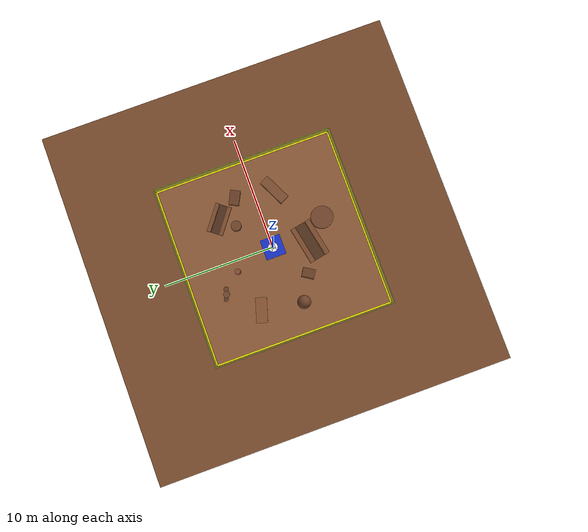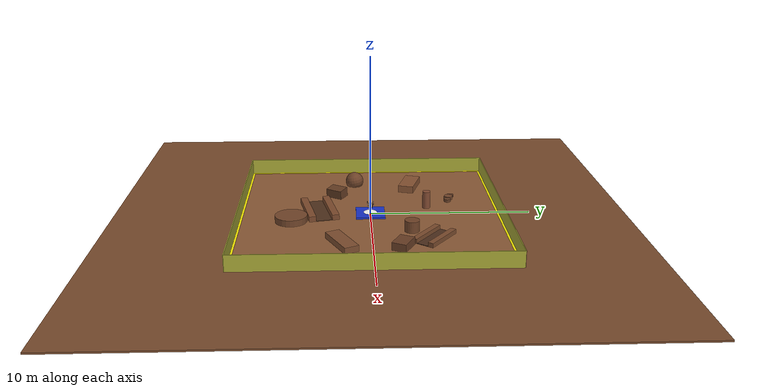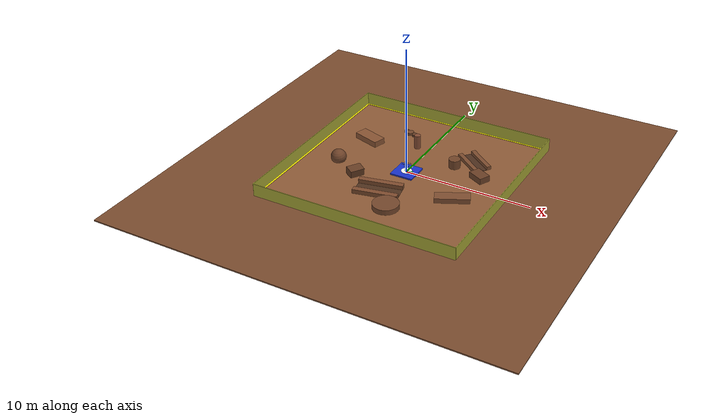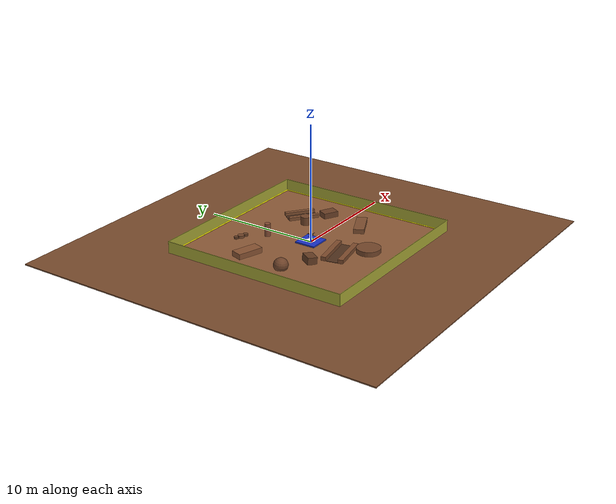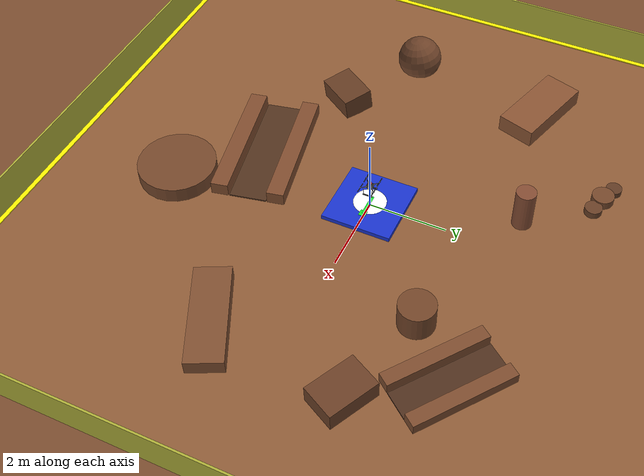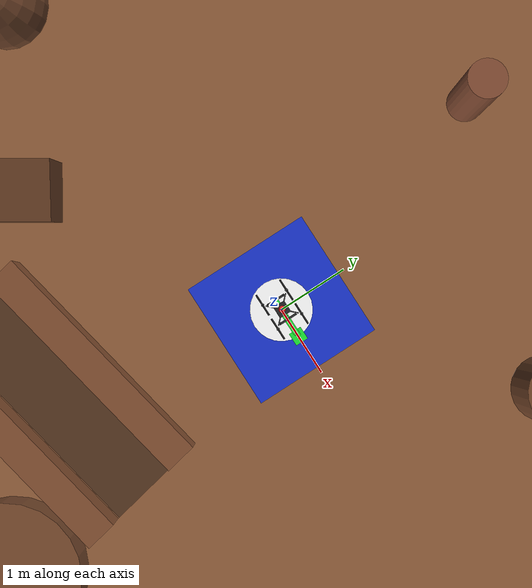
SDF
<?xml version="1.0" ?>
<sdf version="1.10">
  <world name="arena_world">
    <physics name="1ms" type="ignored">
      <max_step_size>0.001</max_step_size>
      <real_time_factor>1.0</real_time_factor>
    </physics>

    <plugin filename="gz-sim-physics-system" name="gz::sim::systems::Physics"/>
    <plugin filename="gz-sim-user-commands-system" name="gz::sim::systems::UserCommands"/>
    <plugin filename="gz-sim-scene-broadcaster-system" name="gz::sim::systems::SceneBroadcaster"/>
    <plugin filename="gz-sim-sensors-system" name="gz::sim::systems::Sensors">
      <render_engine>ogre2</render_engine>
    </plugin>

    <scene>
      <ambient>0.65 0.58 0.50 1</ambient>
      <background>0.78 0.71 0.62 1</background>
      <grid>false</grid>
    </scene>

    <!-- Start with camera framed on base + drone spawn area -->
    <gui fullscreen="0">
      <camera name="spawn_view">
        <!-- Keep default view inside the arena to avoid rendering through transparent walls. -->
        <pose>-6.0 -6.0 6.2 0 0.47 0.78</pose>
        <view_controller>orbit</view_controller>
        <projection_type>perspective</projection_type>
      </camera>
    </gui>

    <light type="directional" name="sun">
      <cast_shadows>true</cast_shadows>
      <pose>0 0 20 0 0 0</pose>
      <diffuse>0.95 0.88 0.78 1</diffuse>
      <specular>0.2 0.2 0.2 1</specular>
      <direction>-0.45 0.15 -0.88</direction>
    </light>

    <!-- Full floor -->
    <model name="arena_floor">
      <static>true</static>
      <pose>0 0 -0.05 0 0 0</pose>
      <link name="link">
        <collision name="collision">
          <geometry>
            <box>
              <size>32 32 0.1</size>
            </box>
          </geometry>
        </collision>
        <visual name="visual">
          <geometry>
            <box>
              <size>32 32 0.1</size>
            </box>
          </geometry>
          <material>
            <ambient>0.48 0.30 0.18 1</ambient>
            <diffuse>0.48 0.30 0.18 1</diffuse>
          </material>
        </visual>
      </link>
    </model>

    <!-- 16m x 16m mission zone tint -->
    <model name="arena_zone">
      <static>true</static>
      <pose>0 0 0.001 0 0 0</pose>
      <link name="link">
        <visual name="visual">
          <geometry>
            <box>
              <size>16 16 0.002</size>
            </box>
          </geometry>
          <material>
            <ambient>0.56 0.36 0.22 1</ambient>
            <diffuse>0.56 0.36 0.22 1</diffuse>
          </material>
        </visual>
      </link>
    </model>

    <!-- Yellow boundary markers -->
    <model name="yellow_bounds">
      <static>true</static>
      <pose>0 0 0.015 0 0 0</pose>
      <link name="link">
        <visual name="north">
          <pose>8 0 0 0 0 0</pose>
          <geometry>
            <box>
              <size>0.12 16 0.03</size>
            </box>
          </geometry>
          <material>
            <ambient>1 0.95 0.0 1</ambient>
            <diffuse>1 0.95 0.0 1</diffuse>
          </material>
        </visual>
        <visual name="south">
          <pose>-8 0 0 0 0 0</pose>
          <geometry>
            <box>
              <size>0.12 16 0.03</size>
            </box>
          </geometry>
          <material>
            <ambient>1 0.95 0.0 1</ambient>
            <diffuse>1 0.95 0.0 1</diffuse>
          </material>
        </visual>
        <visual name="east">
          <pose>0 8 0 0 0 0</pose>
          <geometry>
            <box>
              <size>16 0.12 0.03</size>
            </box>
          </geometry>
          <material>
            <ambient>1 0.95 0.0 1</ambient>
            <diffuse>1 0.95 0.0 1</diffuse>
          </material>
        </visual>
        <visual name="west">
          <pose>0 -8 0 0 0 0</pose>
          <geometry>
            <box>
              <size>16 0.12 0.03</size>
            </box>
          </geometry>
          <material>
            <ambient>1 0.95 0.0 1</ambient>
            <diffuse>1 0.95 0.0 1</diffuse>
          </material>
        </visual>
      </link>
    </model>

    <!-- Optional low perimeter walls for clearer bounds -->
    <model name="arena_walls">
      <static>true</static>
      <pose>0 0 0.5 0 0 0</pose>
      <link name="link">
        <collision name="north_collision">
          <pose>8.1 0 0 0 0 0</pose>
          <geometry>
            <box>
              <size>0.05 16.2 1.0</size>
            </box>
          </geometry>
        </collision>
        <collision name="south_collision">
          <pose>-8.1 0 0 0 0 0</pose>
          <geometry>
            <box>
              <size>0.05 16.2 1.0</size>
            </box>
          </geometry>
        </collision>
        <collision name="east_collision">
          <pose>0 8.1 0 0 0 0</pose>
          <geometry>
            <box>
              <size>16.2 0.05 1.0</size>
            </box>
          </geometry>
        </collision>
        <collision name="west_collision">
          <pose>0 -8.1 0 0 0 0</pose>
          <geometry>
            <box>
              <size>16.2 0.05 1.0</size>
            </box>
          </geometry>
        </collision>
        <visual name="north_visual">
          <pose>8.1 0 0 0 0 0</pose>
          <geometry>
            <box>
              <size>0.05 16.2 1.0</size>
            </box>
          </geometry>
          <material>
            <ambient>0.68 0.68 0.22 1</ambient>
            <diffuse>0.68 0.68 0.22 1</diffuse>
          </material>
        </visual>
        <visual name="south_visual">
          <pose>-8.1 0 0 0 0 0</pose>
          <geometry>
            <box>
              <size>0.05 16.2 1.0</size>
            </box>
          </geometry>
          <material>
            <ambient>0.68 0.68 0.22 1</ambient>
            <diffuse>0.68 0.68 0.22 1</diffuse>
          </material>
        </visual>
        <visual name="east_visual">
          <pose>0 8.1 0 0 0 0</pose>
          <geometry>
            <box>
              <size>16.2 0.05 1.0</size>
            </box>
          </geometry>
          <material>
            <ambient>0.68 0.68 0.22 1</ambient>
            <diffuse>0.68 0.68 0.22 1</diffuse>
          </material>
        </visual>
        <visual name="west_visual">
          <pose>0 -8.1 0 0 0 0</pose>
          <geometry>
            <box>
              <size>16.2 0.05 1.0</size>
            </box>
          </geometry>
          <material>
            <ambient>0.68 0.68 0.22 1</ambient>
            <diffuse>0.68 0.68 0.22 1</diffuse>
          </material>
        </visual>
      </link>
    </model>

    <!-- Base / dock at center -->
    <model name="base_station">
      <static>true</static>
      <pose>0 0 0.06 0 0 0</pose>
      <link name="link">
        <collision name="collision">
          <geometry>
            <box>
              <size>1.8 1.8 0.12</size>
            </box>
          </geometry>
        </collision>
        <visual name="base_visual">
          <geometry>
            <box>
              <size>1.8 1.8 0.12</size>
            </box>
          </geometry>
          <material>
            <ambient>0.10 0.20 0.80 1</ambient>
            <diffuse>0.10 0.20 0.80 1</diffuse>
          </material>
        </visual>
        <visual name="landing_target_ring">
          <pose>0 0 0.065 0 0 0</pose>
          <geometry>
            <cylinder>
              <radius>0.42</radius>
              <length>0.002</length>
            </cylinder>
          </geometry>
          <material>
            <ambient>1.0 1.0 1.0 1</ambient>
            <diffuse>1.0 1.0 1.0 1</diffuse>
          </material>
        </visual>
        <visual name="base_arrow_shaft">
          <pose>0.12 0 0.066 0 0 0</pose>
          <geometry>
            <box>
              <size>0.60 0.08 0.004</size>
            </box>
          </geometry>
          <material>
            <ambient>0.10 0.90 0.20 1</ambient>
            <diffuse>0.10 0.90 0.20 1</diffuse>
          </material>
        </visual>
        <visual name="base_arrow_head">
          <pose>0.42 0 0.066 0 0 0</pose>
          <geometry>
            <box>
              <size>0.18 0.18 0.004</size>
            </box>
          </geometry>
          <material>
            <ambient>0.10 0.90 0.20 1</ambient>
            <diffuse>0.10 0.90 0.20 1</diffuse>
          </material>
        </visual>
      </link>
    </model>

    <!-- Arena obstacles -->
    <model name="obstacle_rock_1">
      <static>true</static>
      <pose>2.8 2.4 0.35 0 0 0.4</pose>
      <link name="link">
        <collision name="collision">
          <geometry>
            <cylinder>
              <radius>0.45</radius>
              <length>0.7</length>
            </cylinder>
          </geometry>
        </collision>
        <visual name="visual">
          <geometry>
            <cylinder>
              <radius>0.45</radius>
              <length>0.7</length>
            </cylinder>
          </geometry>
          <material>
            <ambient>0.45 0.27 0.16 1</ambient>
            <diffuse>0.45 0.27 0.16 1</diffuse>
          </material>
        </visual>
      </link>
    </model>

    <model name="obstacle_rock_2">
      <static>true</static>
      <pose>-3.2 -2.1 0.30 0.1 0 1.0</pose>
      <link name="link">
        <collision name="collision">
          <geometry>
            <box>
              <size>1.1 0.8 0.6</size>
            </box>
          </geometry>
        </collision>
        <visual name="visual">
          <geometry>
            <box>
              <size>1.1 0.8 0.6</size>
            </box>
          </geometry>
          <material>
            <ambient>0.40 0.24 0.14 1</ambient>
            <diffuse>0.40 0.24 0.14 1</diffuse>
          </material>
        </visual>
      </link>
    </model>

    <model name="obstacle_pillar">
      <static>true</static>
      <pose>-1.0 3.6 0.55 0 0 0</pose>
      <link name="link">
        <collision name="collision">
          <geometry>
            <cylinder>
              <radius>0.25</radius>
              <length>1.1</length>
            </cylinder>
          </geometry>
        </collision>
        <visual name="visual">
          <geometry>
            <cylinder>
              <radius>0.25</radius>
              <length>1.1</length>
            </cylinder>
          </geometry>
          <material>
            <ambient>0.52 0.30 0.20 1</ambient>
            <diffuse>0.52 0.30 0.20 1</diffuse>
          </material>
        </visual>
      </link>
    </model>

    <model name="terrain_crest_ridge_1">
      <static>true</static>
      <pose>4.7 -1.8 0.19 0 0 0.45</pose>
      <link name="link">
        <collision name="collision">
          <geometry>
            <box>
              <size>2.6 0.9 0.38</size>
            </box>
          </geometry>
        </collision>
        <visual name="visual">
          <geometry>
            <box>
              <size>2.6 0.9 0.38</size>
            </box>
          </geometry>
          <material>
            <ambient>0.50 0.31 0.19 1</ambient>
            <diffuse>0.50 0.31 0.19 1</diffuse>
          </material>
        </visual>
      </link>
    </model>

    <model name="terrain_crest_ridge_2">
      <static>true</static>
      <pose>-4.8 2.8 0.23 0 0 -0.30</pose>
      <link name="link">
        <collision name="collision">
          <geometry>
            <box>
              <size>2.2 1.0 0.46</size>
            </box>
          </geometry>
        </collision>
        <visual name="visual">
          <geometry>
            <box>
              <size>2.2 1.0 0.46</size>
            </box>
          </geometry>
          <material>
            <ambient>0.54 0.33 0.20 1</ambient>
            <diffuse>0.54 0.33 0.20 1</diffuse>
          </material>
        </visual>
      </link>
    </model>

    <model name="terrain_crest_mound">
      <static>true</static>
      <pose>1.0 -4.9 0.20 0 0 0</pose>
      <link name="link">
        <collision name="collision">
          <geometry>
            <cylinder>
              <radius>1.0</radius>
              <length>0.40</length>
            </cylinder>
          </geometry>
        </collision>
        <visual name="visual">
          <geometry>
            <cylinder>
              <radius>1.0</radius>
              <length>0.40</length>
            </cylinder>
          </geometry>
          <material>
            <ambient>0.46 0.28 0.17 1</ambient>
            <diffuse>0.46 0.28 0.17 1</diffuse>
          </material>
        </visual>
      </link>
    </model>

    <model name="terrain_trough_1">
      <static>true</static>
      <pose>-0.6 -3.2 0.0 0 0 0.20</pose>
      <link name="link">
        <collision name="left_berm_collision">
          <pose>0 0.72 0.17 0 0 0</pose>
          <geometry>
            <box>
              <size>3.4 0.44 0.34</size>
            </box>
          </geometry>
        </collision>
        <collision name="right_berm_collision">
          <pose>0 -0.72 0.17 0 0 0</pose>
          <geometry>
            <box>
              <size>3.4 0.44 0.34</size>
            </box>
          </geometry>
        </collision>
        <collision name="channel_floor_collision">
          <pose>0 0 0.02 0 0 0</pose>
          <geometry>
            <box>
              <size>3.4 0.95 0.04</size>
            </box>
          </geometry>
        </collision>
        <visual name="left_berm_visual">
          <pose>0 0.72 0.17 0 0 0</pose>
          <geometry>
            <box>
              <size>3.4 0.44 0.34</size>
            </box>
          </geometry>
          <material>
            <ambient>0.50 0.30 0.18 1</ambient>
            <diffuse>0.50 0.30 0.18 1</diffuse>
          </material>
        </visual>
        <visual name="right_berm_visual">
          <pose>0 -0.72 0.17 0 0 0</pose>
          <geometry>
            <box>
              <size>3.4 0.44 0.34</size>
            </box>
          </geometry>
          <material>
            <ambient>0.50 0.30 0.18 1</ambient>
            <diffuse>0.50 0.30 0.18 1</diffuse>
          </material>
        </visual>
        <visual name="channel_floor_visual">
          <pose>0 0 0.02 0 0 0</pose>
          <geometry>
            <box>
              <size>3.4 0.95 0.04</size>
            </box>
          </geometry>
          <material>
            <ambient>0.32 0.20 0.12 1</ambient>
            <diffuse>0.32 0.20 0.12 1</diffuse>
          </material>
        </visual>
      </link>
    </model>

    <model name="terrain_trough_2">
      <static>true</static>
      <pose>3.9 3.6 0.0 0 0 -0.65</pose>
      <link name="link">
        <collision name="left_berm_collision">
          <pose>0 0.55 0.14 0 0 0</pose>
          <geometry>
            <box>
              <size>2.6 0.35 0.28</size>
            </box>
          </geometry>
        </collision>
        <collision name="right_berm_collision">
          <pose>0 -0.55 0.14 0 0 0</pose>
          <geometry>
            <box>
              <size>2.6 0.35 0.28</size>
            </box>
          </geometry>
        </collision>
        <collision name="channel_floor_collision">
          <pose>0 0 0.02 0 0 0</pose>
          <geometry>
            <box>
              <size>2.6 0.70 0.04</size>
            </box>
          </geometry>
        </collision>
        <visual name="left_berm_visual">
          <pose>0 0.55 0.14 0 0 0</pose>
          <geometry>
            <box>
              <size>2.6 0.35 0.28</size>
            </box>
          </geometry>
          <material>
            <ambient>0.49 0.30 0.18 1</ambient>
            <diffuse>0.49 0.30 0.18 1</diffuse>
          </material>
        </visual>
        <visual name="right_berm_visual">
          <pose>0 -0.55 0.14 0 0 0</pose>
          <geometry>
            <box>
              <size>2.6 0.35 0.28</size>
            </box>
          </geometry>
          <material>
            <ambient>0.49 0.30 0.18 1</ambient>
            <diffuse>0.49 0.30 0.18 1</diffuse>
          </material>
        </visual>
        <visual name="channel_floor_visual">
          <pose>0 0 0.02 0 0 0</pose>
          <geometry>
            <box>
              <size>2.6 0.70 0.04</size>
            </box>
          </geometry>
          <material>
            <ambient>0.31 0.19 0.12 1</ambient>
            <diffuse>0.31 0.19 0.12 1</diffuse>
          </material>
        </visual>
      </link>
    </model>

    <model name="obstacle_rock_3">
      <static>true</static>
      <pose>-5.4 -0.9 0.30 0.15 -0.05 0.30</pose>
      <link name="link">
        <collision name="collision">
          <geometry>
            <sphere>
              <radius>0.60</radius>
            </sphere>
          </geometry>
        </collision>
        <visual name="visual">
          <geometry>
            <sphere>
              <radius>0.60</radius>
            </sphere>
          </geometry>
          <material>
            <ambient>0.43 0.26 0.16 1</ambient>
            <diffuse>0.43 0.26 0.16 1</diffuse>
          </material>
        </visual>
      </link>
    </model>

    <model name="obstacle_rock_4">
      <static>true</static>
      <pose>5.2 1.7 0.24 0 0 1.10</pose>
      <link name="link">
        <collision name="collision">
          <geometry>
            <box>
              <size>0.9 1.3 0.48</size>
            </box>
          </geometry>
        </collision>
        <visual name="visual">
          <geometry>
            <box>
              <size>0.9 1.3 0.48</size>
            </box>
          </geometry>
          <material>
            <ambient>0.42 0.25 0.15 1</ambient>
            <diffuse>0.42 0.25 0.15 1</diffuse>
          </material>
        </visual>
      </link>
    </model>

    <model name="obstacle_debris_cluster">
      <static>true</static>
      <pose>-2.5 5.2 0.0 0 0 0.20</pose>
      <link name="link">
        <collision name="rock_a_collision">
          <pose>0.0 0.0 0.11 0 0 0</pose>
          <geometry>
            <cylinder>
              <radius>0.28</radius>
              <length>0.22</length>
            </cylinder>
          </geometry>
        </collision>
        <collision name="rock_b_collision">
          <pose>0.42 -0.20 0.09 0 0 0</pose>
          <geometry>
            <cylinder>
              <radius>0.22</radius>
              <length>0.18</length>
            </cylinder>
          </geometry>
        </collision>
        <collision name="rock_c_collision">
          <pose>-0.35 0.25 0.08 0 0 0</pose>
          <geometry>
            <cylinder>
              <radius>0.20</radius>
              <length>0.16</length>
            </cylinder>
          </geometry>
        </collision>
        <visual name="rock_a_visual">
          <pose>0.0 0.0 0.11 0 0 0</pose>
          <geometry>
            <cylinder>
              <radius>0.28</radius>
              <length>0.22</length>
            </cylinder>
          </geometry>
          <material>
            <ambient>0.46 0.28 0.17 1</ambient>
            <diffuse>0.46 0.28 0.17 1</diffuse>
          </material>
        </visual>
        <visual name="rock_b_visual">
          <pose>0.42 -0.20 0.09 0 0 0</pose>
          <geometry>
            <cylinder>
              <radius>0.22</radius>
              <length>0.18</length>
            </cylinder>
          </geometry>
          <material>
            <ambient>0.41 0.25 0.15 1</ambient>
            <diffuse>0.41 0.25 0.15 1</diffuse>
          </material>
        </visual>
        <visual name="rock_c_visual">
          <pose>-0.35 0.25 0.08 0 0 0</pose>
          <geometry>
            <cylinder>
              <radius>0.20</radius>
              <length>0.16</length>
            </cylinder>
          </geometry>
          <material>
            <ambient>0.38 0.23 0.14 1</ambient>
            <diffuse>0.38 0.23 0.14 1</diffuse>
          </material>
        </visual>
      </link>
    </model>

    <!-- Mission drone spawn on base center -->
    <include>
      <name>px4_x500_lidar_rgb</name>
      <uri>file:///home/kunal/Desktop/drone/models/px4_x500_lidar_rgb/model.sdf</uri>
      <pose>0 0 0.70 0 0 0</pose>
    </include>
  </world>
</sdf>

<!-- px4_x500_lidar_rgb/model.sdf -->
<sdf version="1.10">
  <model name="px4_x500_lidar_rgb">
    <pose>0 0 0.25 0 0 0</pose>
    <static>false</static>
    <self_collide>false</self_collide>
    <allow_auto_disable>false</allow_auto_disable>

    <link name="base_link">
      <pose>0 0 0 0 0 0</pose>
      <inertial>
        <mass>1.20</mass>
        <inertia>
          <ixx>0.00281</ixx>
          <ixy>0.0</ixy>
          <ixz>0.0</ixz>
          <iyy>0.00281</iyy>
          <iyz>0.0</iyz>
          <izz>0.00512</izz>
        </inertia>
      </inertial>
      <collision name="base_collision">
        <geometry>
          <box>
            <size>0.16 0.16 0.05</size>
          </box>
        </geometry>
      </collision>
      <visual name="base_visual">
        <geometry>
          <box>
            <size>0.16 0.16 0.05</size>
          </box>
        </geometry>
        <material>
          <ambient>0.14 0.14 0.14 1</ambient>
          <diffuse>0.14 0.14 0.14 1</diffuse>
        </material>
      </visual>
      <visual name="arm_visual_1">
        <pose>0 0 0.01 0 0 0.785398</pose>
        <geometry>
          <box>
            <size>0.42 0.015 0.015</size>
          </box>
        </geometry>
        <material>
          <ambient>0.2 0.2 0.2 1</ambient>
          <diffuse>0.2 0.2 0.2 1</diffuse>
        </material>
      </visual>
      <visual name="arm_visual_2">
        <pose>0 0 0.01 0 0 -0.785398</pose>
        <geometry>
          <box>
            <size>0.42 0.015 0.015</size>
          </box>
        </geometry>
        <material>
          <ambient>0.2 0.2 0.2 1</ambient>
          <diffuse>0.2 0.2 0.2 1</diffuse>
        </material>
      </visual>
      <!-- Bright marker to keep the drone visible in wide arena views -->
      <visual name="visibility_beacon_visual">
        <pose>0 0 0.09 0 0 0</pose>
        <geometry>
          <sphere>
            <radius>0.045</radius>
          </sphere>
        </geometry>
        <material>
          <ambient>0.95 0.10 0.10 1</ambient>
          <diffuse>0.95 0.10 0.10 1</diffuse>
          <emissive>0.35 0.03 0.03 1</emissive>
        </material>
      </visual>
      <battery name="main_battery">
        <voltage>16.8</voltage>
      </battery>
      <sensor name="tof_down_sensor" type="gpu_lidar">
        <pose>0 0 -0.04 0 -1.570796 0</pose>
        <topic>tof_scan</topic>
        <always_on>1</always_on>
        <update_rate>30</update_rate>
        <lidar>
          <scan>
            <horizontal>
              <samples>1</samples>
              <resolution>1</resolution>
              <min_angle>0</min_angle>
              <max_angle>0</max_angle>
            </horizontal>
            <vertical>
              <samples>1</samples>
              <resolution>1</resolution>
              <min_angle>0</min_angle>
              <max_angle>0</max_angle>
            </vertical>
          </scan>
          <range>
            <min>0.05</min>
            <max>10.0</max>
            <resolution>0.01</resolution>
          </range>
        </lidar>
        <visualize>false</visualize>
      </sensor>
    </link>

    <link name="battery_link">
      <pose>0 0 -0.045 0 0 0</pose>
      <inertial>
        <mass>0.622</mass>
        <inertia>
          <ixx>0.000169</ixx>
          <ixy>0.0</ixy>
          <ixz>0.0</ixz>
          <iyy>0.001367</iyy>
          <iyz>0.0</iyz>
          <izz>0.001454</izz>
        </inertia>
      </inertial>
      <collision name="battery_collision">
        <geometry>
          <box>
            <size>0.157 0.047 0.038</size>
          </box>
        </geometry>
      </collision>
      <visual name="battery_visual">
        <geometry>
          <box>
            <size>0.157 0.047 0.038</size>
          </box>
        </geometry>
        <material>
          <ambient>0.95 0.82 0.14 1</ambient>
          <diffuse>0.95 0.82 0.14 1</diffuse>
        </material>
      </visual>
    </link>

    <joint name="battery_joint" type="fixed">
      <parent>base_link</parent>
      <child>battery_link</child>
    </joint>

    <link name="px4_fcu_link">
      <pose>0 0 0.03 0 0 0</pose>
      <inertial>
        <mass>0.060</mass>
        <inertia>
          <ixx>9.375e-06</ixx>
          <ixy>0.0</ixy>
          <ixz>0.0</ixz>
          <iyy>1.3625e-05</iyy>
          <iyz>0.0</iyz>
          <izz>2.05e-05</izz>
        </inertia>
      </inertial>
      <collision name="px4_fcu_collision">
        <geometry>
          <box>
            <size>0.05 0.04 0.015</size>
          </box>
        </geometry>
      </collision>
      <visual name="px4_fcu_visual">
        <geometry>
          <box>
            <size>0.05 0.04 0.015</size>
          </box>
        </geometry>
        <material>
          <ambient>0.07 0.12 0.3 1</ambient>
          <diffuse>0.07 0.12 0.3 1</diffuse>
        </material>
      </visual>
      <sensor name="imu_sensor" type="imu">
        <always_on>1</always_on>
        <update_rate>250</update_rate>
        <topic>imu</topic>
      </sensor>
    </link>

    <joint name="px4_fcu_joint" type="fixed">
      <parent>base_link</parent>
      <child>px4_fcu_link</child>
    </joint>

    <link name="lidar_link">
      <pose>0 0 0.065 0 0 0</pose>
      <inertial>
        <mass>0.190</mass>
        <inertia>
          <ixx>8.744e-05</ixx>
          <ixy>0.0</ixy>
          <ixz>0.0</ixz>
          <iyy>8.744e-05</iyy>
          <iyz>0.0</iyz>
          <izz>1.372e-04</izz>
        </inertia>
      </inertial>
      <collision name="lidar_collision">
        <geometry>
          <cylinder>
            <radius>0.038</radius>
            <length>0.041</length>
          </cylinder>
        </geometry>
      </collision>
      <visual name="lidar_visual">
        <geometry>
          <cylinder>
            <radius>0.038</radius>
            <length>0.041</length>
          </cylinder>
        </geometry>
        <material>
          <ambient>0.72 0.12 0.12 1</ambient>
          <diffuse>0.72 0.12 0.12 1</diffuse>
        </material>
      </visual>
      <sensor name="lidar_2d_sensor" type="gpu_lidar">
        <topic>lidar_2d</topic>
        <always_on>1</always_on>
        <update_rate>10</update_rate>
        <lidar>
          <scan>
            <horizontal>
              <samples>720</samples>
              <resolution>1</resolution>
              <min_angle>-2.35619</min_angle>
              <max_angle>2.35619</max_angle>
            </horizontal>
            <vertical>
              <samples>1</samples>
              <resolution>1</resolution>
              <min_angle>0</min_angle>
              <max_angle>0</max_angle>
            </vertical>
          </scan>
          <range>
            <min>0.1</min>
            <max>30.0</max>
            <resolution>0.01</resolution>
          </range>
        </lidar>
        <visualize>true</visualize>
      </sensor>

      <sensor name="terrain_lidar_sensor" type="gpu_lidar">
        <pose>0 0 0 0 -0.52 0</pose>
        <topic>lidar_terrain_scan</topic>
        <always_on>1</always_on>
        <update_rate>14</update_rate>
        <lidar>
          <scan>
            <horizontal>
              <samples>1080</samples>
              <resolution>1</resolution>
              <min_angle>-3.14159</min_angle>
              <max_angle>3.14159</max_angle>
            </horizontal>
            <vertical>
              <samples>1</samples>
              <resolution>1</resolution>
              <min_angle>0</min_angle>
              <max_angle>0</max_angle>
            </vertical>
          </scan>
          <range>
            <min>0.15</min>
            <max>35.0</max>
            <resolution>0.005</resolution>
          </range>
        </lidar>
        <visualize>false</visualize>
      </sensor>
    </link>

    <joint name="lidar_joint" type="fixed">
      <parent>base_link</parent>
      <child>lidar_link</child>
    </joint>

    <link name="front_rgb_camera_link">
      <pose>0.10 0.0 0.020 0 0.523599 0</pose>
      <inertial>
        <mass>0.004</mass>
        <inertia>
          <ixx>2.37e-07</ixx>
          <ixy>0.0</ixy>
          <ixz>0.0</ixz>
          <iyy>3.53e-07</iyy>
          <iyz>0.0</iyz>
          <izz>4.17e-07</izz>
        </inertia>
      </inertial>
      <collision name="front_rgb_camera_collision">
        <geometry>
          <box>
            <size>0.025 0.024 0.012</size>
          </box>
        </geometry>
      </collision>
      <visual name="front_rgb_camera_visual">
        <geometry>
          <box>
            <size>0.025 0.024 0.012</size>
          </box>
        </geometry>
        <material>
          <ambient>0.05 0.05 0.05 1</ambient>
          <diffuse>0.05 0.05 0.05 1</diffuse>
        </material>
      </visual>
      <sensor name="front_rgb_camera" type="camera">
        <always_on>1</always_on>
        <update_rate>30</update_rate>
        <topic>front_rgb_camera/image_raw</topic>
        <camera>
          <horizontal_fov>1.15192</horizontal_fov>
          <image>
            <width>1280</width>
            <height>720</height>
            <format>R8G8B8</format>
          </image>
          <clip>
            <near>0.05</near>
            <far>120</far>
          </clip>
        </camera>
        <visualize>true</visualize>
      </sensor>
    </link>

    <joint name="front_rgb_camera_joint" type="fixed">
      <parent>base_link</parent>
      <child>front_rgb_camera_link</child>
    </joint>

    <link name="down_rgb_camera_link">
      <pose>0.0 0.0 -0.082 0 1.570796 0</pose>
      <inertial>
        <mass>0.004</mass>
        <inertia>
          <ixx>2.37e-07</ixx>
          <ixy>0.0</ixy>
          <ixz>0.0</ixz>
          <iyy>3.53e-07</iyy>
          <iyz>0.0</iyz>
          <izz>4.17e-07</izz>
        </inertia>
      </inertial>
      <collision name="down_rgb_camera_collision">
        <geometry>
          <box>
            <size>0.025 0.024 0.012</size>
          </box>
        </geometry>
      </collision>
      <visual name="down_rgb_camera_visual">
        <geometry>
          <box>
            <size>0.025 0.024 0.012</size>
          </box>
        </geometry>
        <material>
          <ambient>0.05 0.05 0.05 1</ambient>
          <diffuse>0.05 0.05 0.05 1</diffuse>
        </material>
      </visual>
      <sensor name="down_rgb_camera" type="camera">
        <always_on>1</always_on>
        <update_rate>30</update_rate>
        <topic>down_rgb_camera/image_raw</topic>
        <camera>
          <horizontal_fov>1.15192</horizontal_fov>
          <image>
            <width>1280</width>
            <height>720</height>
            <format>R8G8B8</format>
          </image>
          <clip>
            <near>0.05</near>
            <far>120</far>
          </clip>
        </camera>
        <visualize>true</visualize>
      </sensor>
    </link>

    <joint name="down_rgb_camera_joint" type="fixed">
      <parent>base_link</parent>
      <child>down_rgb_camera_link</child>
    </joint>

    <link name="landing_leg_front_left">
      <pose>0.145 0.115 -0.125 0 0 0</pose>
      <inertial>
        <mass>0.024</mass>
        <inertia>
          <ixx>8.6e-05</ixx>
          <ixy>0.0</ixy>
          <ixz>0.0</ixz>
          <iyy>8.6e-05</iyy>
          <iyz>0.0</iyz>
          <izz>1.2e-06</izz>
        </inertia>
      </inertial>
      <collision name="landing_leg_front_left_collision">
        <geometry>
          <cylinder>
            <radius>0.0085</radius>
            <length>0.19</length>
          </cylinder>
        </geometry>
      </collision>
      <visual name="landing_leg_front_left_visual">
        <geometry>
          <cylinder>
            <radius>0.0085</radius>
            <length>0.19</length>
          </cylinder>
        </geometry>
        <material>
          <ambient>0.16 0.16 0.16 1</ambient>
          <diffuse>0.16 0.16 0.16 1</diffuse>
        </material>
      </visual>
    </link>

    <joint name="landing_leg_front_left_joint" type="fixed">
      <parent>base_link</parent>
      <child>landing_leg_front_left</child>
    </joint>

    <link name="landing_leg_front_right">
      <pose>0.145 -0.115 -0.125 0 0 0</pose>
      <inertial>
        <mass>0.024</mass>
        <inertia>
          <ixx>8.6e-05</ixx>
          <ixy>0.0</ixy>
          <ixz>0.0</ixz>
          <iyy>8.6e-05</iyy>
          <iyz>0.0</iyz>
          <izz>1.2e-06</izz>
        </inertia>
      </inertial>
      <collision name="landing_leg_front_right_collision">
        <geometry>
          <cylinder>
            <radius>0.0085</radius>
            <length>0.19</length>
          </cylinder>
        </geometry>
      </collision>
      <visual name="landing_leg_front_right_visual">
        <geometry>
          <cylinder>
            <radius>0.0085</radius>
            <length>0.19</length>
          </cylinder>
        </geometry>
        <material>
          <ambient>0.16 0.16 0.16 1</ambient>
          <diffuse>0.16 0.16 0.16 1</diffuse>
        </material>
      </visual>
    </link>

    <joint name="landing_leg_front_right_joint" type="fixed">
      <parent>base_link</parent>
      <child>landing_leg_front_right</child>
    </joint>

    <link name="landing_leg_rear_left">
      <pose>-0.145 0.115 -0.125 0 0 0</pose>
      <inertial>
        <mass>0.024</mass>
        <inertia>
          <ixx>8.6e-05</ixx>
          <ixy>0.0</ixy>
          <ixz>0.0</ixz>
          <iyy>8.6e-05</iyy>
          <iyz>0.0</iyz>
          <izz>1.2e-06</izz>
        </inertia>
      </inertial>
      <collision name="landing_leg_rear_left_collision">
        <geometry>
          <cylinder>
            <radius>0.0085</radius>
            <length>0.19</length>
          </cylinder>
        </geometry>
      </collision>
      <visual name="landing_leg_rear_left_visual">
        <geometry>
          <cylinder>
            <radius>0.0085</radius>
            <length>0.19</length>
          </cylinder>
        </geometry>
        <material>
          <ambient>0.16 0.16 0.16 1</ambient>
          <diffuse>0.16 0.16 0.16 1</diffuse>
        </material>
      </visual>
    </link>

    <joint name="landing_leg_rear_left_joint" type="fixed">
      <parent>base_link</parent>
      <child>landing_leg_rear_left</child>
    </joint>

    <link name="landing_leg_rear_right">
      <pose>-0.145 -0.115 -0.125 0 0 0</pose>
      <inertial>
        <mass>0.024</mass>
        <inertia>
          <ixx>8.6e-05</ixx>
          <ixy>0.0</ixy>
          <ixz>0.0</ixz>
          <iyy>8.6e-05</iyy>
          <iyz>0.0</iyz>
          <izz>1.2e-06</izz>
        </inertia>
      </inertial>
      <collision name="landing_leg_rear_right_collision">
        <geometry>
          <cylinder>
            <radius>0.0085</radius>
            <length>0.19</length>
          </cylinder>
        </geometry>
      </collision>
      <visual name="landing_leg_rear_right_visual">
        <geometry>
          <cylinder>
            <radius>0.0085</radius>
            <length>0.19</length>
          </cylinder>
        </geometry>
        <material>
          <ambient>0.16 0.16 0.16 1</ambient>
          <diffuse>0.16 0.16 0.16 1</diffuse>
        </material>
      </visual>
    </link>

    <joint name="landing_leg_rear_right_joint" type="fixed">
      <parent>base_link</parent>
      <child>landing_leg_rear_right</child>
    </joint>

    <link name="landing_pair_front_skid">
      <pose>0.145 0.0 -0.205 0 0 0</pose>
      <inertial>
        <mass>0.028</mass>
        <inertia>
          <ixx>1.58e-04</ixx>
          <ixy>0.0</ixy>
          <ixz>0.0</ixz>
          <iyy>2.17e-06</iyy>
          <iyz>0.0</iyz>
          <izz>1.60e-04</izz>
        </inertia>
      </inertial>
      <collision name="landing_pair_front_skid_collision">
        <geometry>
          <box>
            <size>0.028 0.26 0.012</size>
          </box>
        </geometry>
      </collision>
      <visual name="landing_pair_front_skid_visual">
        <geometry>
          <box>
            <size>0.028 0.26 0.012</size>
          </box>
        </geometry>
        <material>
          <ambient>0.16 0.16 0.16 1</ambient>
          <diffuse>0.16 0.16 0.16 1</diffuse>
        </material>
      </visual>
    </link>

    <joint name="landing_pair_front_skid_joint" type="fixed">
      <parent>base_link</parent>
      <child>landing_pair_front_skid</child>
    </joint>

    <link name="landing_pair_rear_skid">
      <pose>-0.145 0.0 -0.205 0 0 0</pose>
      <inertial>
        <mass>0.028</mass>
        <inertia>
          <ixx>1.58e-04</ixx>
          <ixy>0.0</ixy>
          <ixz>0.0</ixz>
          <iyy>2.17e-06</iyy>
          <iyz>0.0</iyz>
          <izz>1.60e-04</izz>
        </inertia>
      </inertial>
      <collision name="landing_pair_rear_skid_collision">
        <geometry>
          <box>
            <size>0.028 0.26 0.012</size>
          </box>
        </geometry>
      </collision>
      <visual name="landing_pair_rear_skid_visual">
        <geometry>
          <box>
            <size>0.028 0.26 0.012</size>
          </box>
        </geometry>
        <material>
          <ambient>0.16 0.16 0.16 1</ambient>
          <diffuse>0.16 0.16 0.16 1</diffuse>
        </material>
      </visual>
    </link>

    <joint name="landing_pair_rear_skid_joint" type="fixed">
      <parent>base_link</parent>
      <child>landing_pair_rear_skid</child>
    </joint>

    <link name="rotor_0">
      <pose>0.1768 0.1768 0.030 0 0 0</pose>
      <inertial>
        <mass>0.030</mass>
        <inertia>
          <ixx>0.0001175</ixx>
          <ixy>0.0</ixy>
          <ixz>0.0</ixz>
          <iyy>0.0001175</iyy>
          <iyz>0.0</iyz>
          <izz>0.0002344</izz>
        </inertia>
      </inertial>
      <collision name="rotor_0_collision">
        <geometry>
          <cylinder>
            <radius>0.1524</radius>
            <length>0.008</length>
          </cylinder>
        </geometry>
      </collision>
      <visual name="rotor_0_hub_visual">
        <geometry>
          <cylinder>
            <radius>0.020</radius>
            <length>0.010</length>
          </cylinder>
        </geometry>
        <material>
          <ambient>0.06 0.06 0.06 1</ambient>
          <diffuse>0.06 0.06 0.06 1</diffuse>
        </material>
      </visual>
      <visual name="rotor_0_blade_a_visual">
        <pose>0.0762 0.0 0.0 0 0.10 0</pose>
        <geometry>
          <box>
            <size>0.150 0.022 0.004</size>
          </box>
        </geometry>
        <material>
          <ambient>0.10 0.10 0.10 1</ambient>
          <diffuse>0.10 0.10 0.10 1</diffuse>
        </material>
      </visual>
      <visual name="rotor_0_blade_b_visual">
        <pose>-0.0762 0.0 0.0 0 0.10 0</pose>
        <geometry>
          <box>
            <size>0.150 0.022 0.004</size>
          </box>
        </geometry>
        <material>
          <ambient>0.10 0.10 0.10 1</ambient>
          <diffuse>0.10 0.10 0.10 1</diffuse>
        </material>
      </visual>
    </link>

    <joint name="rotor_0_joint" type="revolute">
      <parent>base_link</parent>
      <child>rotor_0</child>
      <axis>
        <xyz>0 0 1</xyz>
        <limit>
          <lower>-1e16</lower>
          <upper>1e16</upper>
        </limit>
      </axis>
    </joint>

    <link name="rotor_1">
      <pose>-0.1768 0.1768 0.030 0 0 0</pose>
      <inertial>
        <mass>0.030</mass>
        <inertia>
          <ixx>0.0001175</ixx>
          <ixy>0.0</ixy>
          <ixz>0.0</ixz>
          <iyy>0.0001175</iyy>
          <iyz>0.0</iyz>
          <izz>0.0002344</izz>
        </inertia>
      </inertial>
      <collision name="rotor_1_collision">
        <geometry>
          <cylinder>
            <radius>0.1524</radius>
            <length>0.008</length>
          </cylinder>
        </geometry>
      </collision>
      <visual name="rotor_1_hub_visual">
        <geometry>
          <cylinder>
            <radius>0.020</radius>
            <length>0.010</length>
          </cylinder>
        </geometry>
        <material>
          <ambient>0.06 0.06 0.06 1</ambient>
          <diffuse>0.06 0.06 0.06 1</diffuse>
        </material>
      </visual>
      <visual name="rotor_1_blade_a_visual">
        <pose>0.0762 0.0 0.0 0 -0.10 0</pose>
        <geometry>
          <box>
            <size>0.150 0.022 0.004</size>
          </box>
        </geometry>
        <material>
          <ambient>0.10 0.10 0.10 1</ambient>
          <diffuse>0.10 0.10 0.10 1</diffuse>
        </material>
      </visual>
      <visual name="rotor_1_blade_b_visual">
        <pose>-0.0762 0.0 0.0 0 -0.10 0</pose>
        <geometry>
          <box>
            <size>0.150 0.022 0.004</size>
          </box>
        </geometry>
        <material>
          <ambient>0.10 0.10 0.10 1</ambient>
          <diffuse>0.10 0.10 0.10 1</diffuse>
        </material>
      </visual>
    </link>

    <joint name="rotor_1_joint" type="revolute">
      <parent>base_link</parent>
      <child>rotor_1</child>
      <axis>
        <xyz>0 0 1</xyz>
        <limit>
          <lower>-1e16</lower>
          <upper>1e16</upper>
        </limit>
      </axis>
    </joint>

    <link name="rotor_2">
      <pose>-0.1768 -0.1768 0.030 0 0 0</pose>
      <inertial>
        <mass>0.030</mass>
        <inertia>
          <ixx>0.0001175</ixx>
          <ixy>0.0</ixy>
          <ixz>0.0</ixz>
          <iyy>0.0001175</iyy>
          <iyz>0.0</iyz>
          <izz>0.0002344</izz>
        </inertia>
      </inertial>
      <collision name="rotor_2_collision">
        <geometry>
          <cylinder>
            <radius>0.1524</radius>
            <length>0.008</length>
          </cylinder>
        </geometry>
      </collision>
      <visual name="rotor_2_hub_visual">
        <geometry>
          <cylinder>
            <radius>0.020</radius>
            <length>0.010</length>
          </cylinder>
        </geometry>
        <material>
          <ambient>0.06 0.06 0.06 1</ambient>
          <diffuse>0.06 0.06 0.06 1</diffuse>
        </material>
      </visual>
      <visual name="rotor_2_blade_a_visual">
        <pose>0.0762 0.0 0.0 0 0.10 0</pose>
        <geometry>
          <box>
            <size>0.150 0.022 0.004</size>
          </box>
        </geometry>
        <material>
          <ambient>0.10 0.10 0.10 1</ambient>
          <diffuse>0.10 0.10 0.10 1</diffuse>
        </material>
      </visual>
      <visual name="rotor_2_blade_b_visual">
        <pose>-0.0762 0.0 0.0 0 0.10 0</pose>
        <geometry>
          <box>
            <size>0.150 0.022 0.004</size>
          </box>
        </geometry>
        <material>
          <ambient>0.10 0.10 0.10 1</ambient>
          <diffuse>0.10 0.10 0.10 1</diffuse>
        </material>
      </visual>
    </link>

    <joint name="rotor_2_joint" type="revolute">
      <parent>base_link</parent>
      <child>rotor_2</child>
      <axis>
        <xyz>0 0 1</xyz>
        <limit>
          <lower>-1e16</lower>
          <upper>1e16</upper>
        </limit>
      </axis>
    </joint>

    <link name="rotor_3">
      <pose>0.1768 -0.1768 0.030 0 0 0</pose>
      <inertial>
        <mass>0.030</mass>
        <inertia>
          <ixx>0.0001175</ixx>
          <ixy>0.0</ixy>
          <ixz>0.0</ixz>
          <iyy>0.0001175</iyy>
          <iyz>0.0</iyz>
          <izz>0.0002344</izz>
        </inertia>
      </inertial>
      <collision name="rotor_3_collision">
        <geometry>
          <cylinder>
            <radius>0.1524</radius>
            <length>0.008</length>
          </cylinder>
        </geometry>
      </collision>
      <visual name="rotor_3_hub_visual">
        <geometry>
          <cylinder>
            <radius>0.020</radius>
            <length>0.010</length>
          </cylinder>
        </geometry>
        <material>
          <ambient>0.06 0.06 0.06 1</ambient>
          <diffuse>0.06 0.06 0.06 1</diffuse>
        </material>
      </visual>
      <visual name="rotor_3_blade_a_visual">
        <pose>0.0762 0.0 0.0 0 -0.10 0</pose>
        <geometry>
          <box>
            <size>0.150 0.022 0.004</size>
          </box>
        </geometry>
        <material>
          <ambient>0.10 0.10 0.10 1</ambient>
          <diffuse>0.10 0.10 0.10 1</diffuse>
        </material>
      </visual>
      <visual name="rotor_3_blade_b_visual">
        <pose>-0.0762 0.0 0.0 0 -0.10 0</pose>
        <geometry>
          <box>
            <size>0.150 0.022 0.004</size>
          </box>
        </geometry>
        <material>
          <ambient>0.10 0.10 0.10 1</ambient>
          <diffuse>0.10 0.10 0.10 1</diffuse>
        </material>
      </visual>
    </link>

    <joint name="rotor_3_joint" type="revolute">
      <parent>base_link</parent>
      <child>rotor_3</child>
      <axis>
        <xyz>0 0 1</xyz>
        <limit>
          <lower>-1e16</lower>
          <upper>1e16</upper>
        </limit>
      </axis>
    </joint>

    <!-- PX4-compatible motor command endpoint (via ESC relay): /model/px4_x500_lidar_rgb/command/motor_speed_faulted -->
    <plugin filename="gz-sim-multicopter-motor-model-system" name="gz::sim::systems::MulticopterMotorModel">
      <robotNamespace>model/px4_x500_lidar_rgb</robotNamespace>
      <jointName>rotor_0_joint</jointName>
      <linkName>rotor_0</linkName>
      <turningDirection>ccw</turningDirection>
      <timeConstantUp>0.0125</timeConstantUp>
      <timeConstantDown>0.025</timeConstantDown>
      <maxRotVelocity>1000.0</maxRotVelocity>
      <motorConstant>1.269e-05</motorConstant>
      <momentConstant>0.016754</momentConstant>
      <commandSubTopic>command/motor_speed_faulted</commandSubTopic>
      <actuator_number>0</actuator_number>
      <rotorDragCoefficient>2.0673e-04</rotorDragCoefficient>
      <rollingMomentCoefficient>1e-06</rollingMomentCoefficient>
      <motorSpeedPubTopic>motor_speed/0</motorSpeedPubTopic>
      <rotorVelocitySlowdownSim>10</rotorVelocitySlowdownSim>
      <motorType>velocity</motorType>
    </plugin>
    <plugin filename="gz-sim-multicopter-motor-model-system" name="gz::sim::systems::MulticopterMotorModel">
      <robotNamespace>model/px4_x500_lidar_rgb</robotNamespace>
      <jointName>rotor_1_joint</jointName>
      <linkName>rotor_1</linkName>
      <turningDirection>cw</turningDirection>
      <timeConstantUp>0.0125</timeConstantUp>
      <timeConstantDown>0.025</timeConstantDown>
      <maxRotVelocity>1000.0</maxRotVelocity>
      <motorConstant>1.269e-05</motorConstant>
      <momentConstant>0.016754</momentConstant>
      <commandSubTopic>command/motor_speed_faulted</commandSubTopic>
      <actuator_number>1</actuator_number>
      <rotorDragCoefficient>2.0673e-04</rotorDragCoefficient>
      <rollingMomentCoefficient>1e-06</rollingMomentCoefficient>
      <motorSpeedPubTopic>motor_speed/1</motorSpeedPubTopic>
      <rotorVelocitySlowdownSim>10</rotorVelocitySlowdownSim>
      <motorType>velocity</motorType>
    </plugin>
    <plugin filename="gz-sim-multicopter-motor-model-system" name="gz::sim::systems::MulticopterMotorModel">
      <robotNamespace>model/px4_x500_lidar_rgb</robotNamespace>
      <jointName>rotor_2_joint</jointName>
      <linkName>rotor_2</linkName>
      <turningDirection>ccw</turningDirection>
      <timeConstantUp>0.0125</timeConstantUp>
      <timeConstantDown>0.025</timeConstantDown>
      <maxRotVelocity>1000.0</maxRotVelocity>
      <motorConstant>1.269e-05</motorConstant>
      <momentConstant>0.016754</momentConstant>
      <commandSubTopic>command/motor_speed_faulted</commandSubTopic>
      <actuator_number>2</actuator_number>
      <rotorDragCoefficient>2.0673e-04</rotorDragCoefficient>
      <rollingMomentCoefficient>1e-06</rollingMomentCoefficient>
      <motorSpeedPubTopic>motor_speed/2</motorSpeedPubTopic>
      <rotorVelocitySlowdownSim>10</rotorVelocitySlowdownSim>
      <motorType>velocity</motorType>
    </plugin>
    <plugin filename="gz-sim-multicopter-motor-model-system" name="gz::sim::systems::MulticopterMotorModel">
      <robotNamespace>model/px4_x500_lidar_rgb</robotNamespace>
      <jointName>rotor_3_joint</jointName>
      <linkName>rotor_3</linkName>
      <turningDirection>cw</turningDirection>
      <timeConstantUp>0.0125</timeConstantUp>
      <timeConstantDown>0.025</timeConstantDown>
      <maxRotVelocity>1000.0</maxRotVelocity>
      <motorConstant>1.269e-05</motorConstant>
      <momentConstant>0.016754</momentConstant>
      <commandSubTopic>command/motor_speed_faulted</commandSubTopic>
      <actuator_number>3</actuator_number>
      <rotorDragCoefficient>2.0673e-04</rotorDragCoefficient>
      <rollingMomentCoefficient>1e-06</rollingMomentCoefficient>
      <motorSpeedPubTopic>motor_speed/3</motorSpeedPubTopic>
      <rotorVelocitySlowdownSim>10</rotorVelocitySlowdownSim>
      <motorType>velocity</motorType>
    </plugin>

    <plugin filename="gz-sim-multicopter-control-system" name="gz::sim::systems::MulticopterVelocityControl">
      <robotNamespace>model/px4_x500_lidar_rgb</robotNamespace>
      <commandSubTopic>gazebo/command/twist</commandSubTopic>
      <enableSubTopic>enable</enableSubTopic>
      <comLinkName>base_link</comLinkName>
      <velocityGain>6 6 10</velocityGain>
      <attitudeGain>4 4 2</attitudeGain>
      <angularRateGain>0.7 0.7 0.7</angularRateGain>
      <maximumLinearAcceleration>1 1 2</maximumLinearAcceleration>
      <maximumLinearVelocity>5 5 5</maximumLinearVelocity>
      <maximumAngularVelocity>3 3 3</maximumAngularVelocity>

      <rotorConfiguration>
        <rotor>
          <jointName>rotor_0_joint</jointName>
          <forceConstant>1.269e-05</forceConstant>
          <momentConstant>1.6754e-2</momentConstant>
          <direction>1</direction>
        </rotor>
        <rotor>
          <jointName>rotor_1_joint</jointName>
          <forceConstant>1.269e-05</forceConstant>
          <momentConstant>1.6754e-2</momentConstant>
          <direction>-1</direction>
        </rotor>
        <rotor>
          <jointName>rotor_2_joint</jointName>
          <forceConstant>1.269e-05</forceConstant>
          <momentConstant>1.6754e-2</momentConstant>
          <direction>1</direction>
        </rotor>
        <rotor>
          <jointName>rotor_3_joint</jointName>
          <forceConstant>1.269e-05</forceConstant>
          <momentConstant>1.6754e-2</momentConstant>
          <direction>-1</direction>
        </rotor>
      </rotorConfiguration>
    </plugin>

    <plugin filename="gz-sim-linearbatteryplugin-system" name="gz::sim::systems::LinearBatteryPlugin">
      <battery_name>main_battery</battery_name>
      <voltage>16.8</voltage>
      <open_circuit_voltage_constant_coef>16.8</open_circuit_voltage_constant_coef>
      <open_circuit_voltage_linear_coef>-8.0</open_circuit_voltage_linear_coef>
      <initial_charge>6.2</initial_charge>
      <capacity>6.2</capacity>
      <resistance>0.04</resistance>
      <smooth_current_tau>1.95</smooth_current_tau>
      <power_load>15.0</power_load>
      <start_on_motion>true</start_on_motion>
    </plugin>

    <plugin filename="gz-sim-joint-state-publisher-system" name="gz::sim::systems::JointStatePublisher"/>
    <plugin filename="gz-sim-odometry-publisher-system" name="gz::sim::systems::OdometryPublisher">
      <dimensions>3</dimensions>
    </plugin>
  </model>
</sdf>
